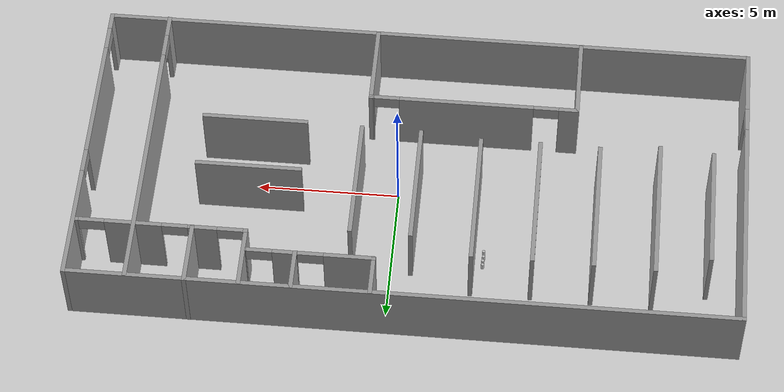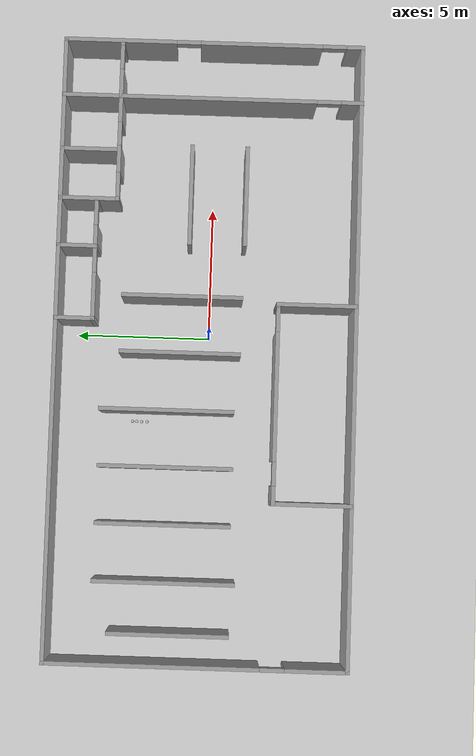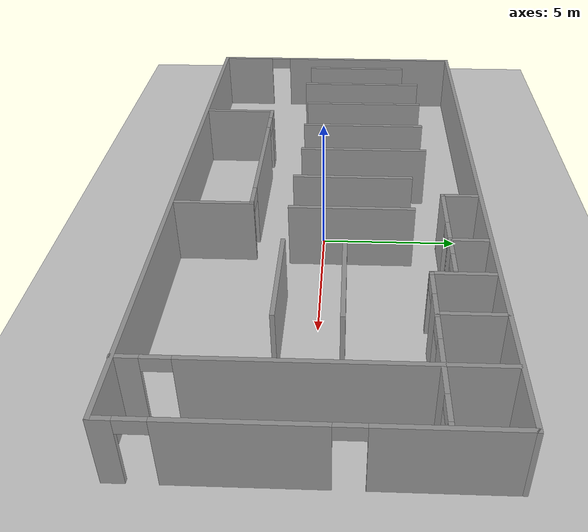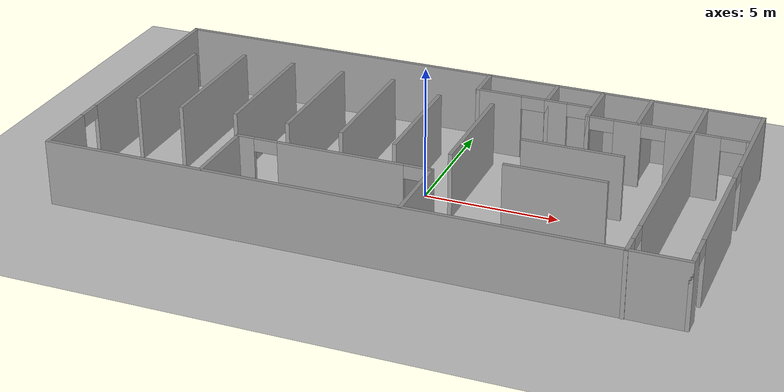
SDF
<sdf version="1.6">
 <world name="default">
  <model name="ground_plane">
   <static>1</static>
   <link name="link">
    <collision name="collision">
     <geometry><plane><normal>0 0 1</normal><size>100 100</size></plane></geometry>
     <surface>
      <contact><collide_bitmask>65535</collide_bitmask></contact>
      <friction><ode><mu>100</mu><mu2>50</mu2></ode></friction>
     </surface>
    </collision>
    <visual name="visual">
     <cast_shadows>0</cast_shadows>
     <geometry><plane><normal>0 0 1</normal><size>100 100</size></plane></geometry>
     <material>
      <script><uri>file://media/materials/scripts/gazebo.material</uri><name>Gazebo/Grey</name></script>
     </material>
    </visual>
   </link>
  </model>
  <model name="retail">
   <pose>-0.623438 0.12885 0 0 -0 0</pose>
   <link name="Wall_16">
    <collision name="Wall_16_Collision">
     <geometry><box><size>23.25 0.15 2.5</size></box></geometry>
     <pose>0 0 1.25 0 -0 0</pose>
    </collision>
    <visual name="Wall_16_Visual">
     <pose>0 0 1.25 0 -0 0</pose>
     <geometry><box><size>23.25 0.15 2.5</size></box></geometry>
     <material>
      <script><uri>file://media/materials/scripts/gazebo.material</uri><name>Gazebo/Grey</name></script>
      <ambient>1 1 1 1</ambient>
     </material>
     <meta><layer>0</layer></meta>
    </visual>
    <pose>0 -5.54055 0 0 -0 0</pose>
   </link>
   <link name="Wall_17">
    <pose>11.55 0.009451 0 0 -0 1.5708</pose>
    <visual name="Wall_17_Visual_0">
     <pose>-5.28706 0 1.25 0 -0 0</pose>
     <geometry><box><size>0.675885 0.15 2.5</size></box></geometry>
     <material>
      <script><uri>file://media/materials/scripts/gazebo.material</uri><name>Gazebo/Grey</name></script>
      <ambient>1 1 1 1</ambient>
     </material>
     <meta><layer>0</layer></meta>
    </visual>
    <collision name="Wall_17_Collision_0">
     <geometry><box><size>0.675885 0.15 2.5</size></box></geometry>
     <pose>-5.28706 0 1.25 0 -0 0</pose>
    </collision>
    <visual name="Wall_17_Visual_1">
     <pose>-1.77241 0 1.25 0 -0 0</pose>
     <geometry><box><size>4.55341 0.15 2.5</size></box></geometry>
     <material>
      <script><uri>file://media/materials/scripts/gazebo.material</uri><name>Gazebo/Grey</name></script>
      <ambient>1 1 1 1</ambient>
     </material>
     <meta><layer>0</layer></meta>
    </visual>
    <collision name="Wall_17_Collision_1">
     <geometry><box><size>4.55341 0.15 2.5</size></box></geometry>
     <pose>-1.77241 0 1.25 0 -0 0</pose>
    </collision>
    <visual name="Wall_17_Visual_2">
     <pose>3.51465 0 1.25 0 -0 0</pose>
     <geometry><box><size>4.2207 0.15 2.5</size></box></geometry>
     <material>
      <script><uri>file://media/materials/scripts/gazebo.material</uri><name>Gazebo/Grey</name></script>
      <ambient>1 1 1 1</ambient>
     </material>
     <meta><layer>0</layer></meta>
    </visual>
    <collision name="Wall_17_Collision_2">
     <geometry><box><size>4.2207 0.15 2.5</size></box></geometry>
     <pose>3.51465 0 1.25 0 -0 0</pose>
    </collision>
    <visual name="Wall_17_Visual_3">
     <pose>-4.49911 0 2.25 0 -0 0</pose>
     <geometry><box><size>0.9 0.15 0.5</size></box></geometry>
     <material>
      <script><uri>file://media/materials/scripts/gazebo.material</uri><name>Gazebo/Grey</name></script>
      <ambient>1 1 1 1</ambient>
     </material>
     <meta><layer>0</layer></meta>
    </visual>
    <collision name="Wall_17_Collision_3">
     <geometry><box><size>0.9 0.15 0.5</size></box></geometry>
     <pose>-4.49911 0 2.25 0 -0 0</pose>
    </collision>
    <visual name="Wall_17_Visual_4">
     <pose>0.954296 0 2.25 0 -0 0</pose>
     <geometry><box><size>0.9 0.15 0.5</size></box></geometry>
     <material>
      <script><uri>file://media/materials/scripts/gazebo.material</uri><name>Gazebo/Grey</name></script>
      <ambient>1 1 1 1</ambient>
     </material>
     <meta><layer>0</layer></meta>
    </visual>
    <collision name="Wall_17_Collision_4">
     <geometry><box><size>0.9 0.15 0.5</size></box></geometry>
     <pose>0.954296 0 2.25 0 -0 0</pose>
    </collision>
   </link>
   <link name="Wall_18">
    <collision name="Wall_18_Collision">
     <geometry><box><size>23.25 0.15 2.5</size></box></geometry>
     <pose>0 0 1.25 0 -0 0</pose>
    </collision>
    <visual name="Wall_18_Visual">
     <pose>0 0 1.25 0 -0 0</pose>
     <geometry><box><size>23.25 0.15 2.5</size></box></geometry>
     <material>
      <script><uri>file://media/materials/scripts/gazebo.material</uri><name>Gazebo/Grey</name></script>
      <ambient>1 1 1 1</ambient>
     </material>
     <meta><layer>0</layer></meta>
    </visual>
    <pose>0 5.55945 0 0 -0 3.14159</pose>
   </link>
   <link name="Wall_19">
    <pose>-11.55 0.009451 0 0 -0 -1.5708</pose>
    <visual name="Wall_19_Visual_0">
     <pose>-1.63416 0 1.25 0 -0 0</pose>
     <geometry><box><size>7.98168 0.15 2.5</size></box></geometry>
     <material>
      <script><uri>file://media/materials/scripts/gazebo.material</uri><name>Gazebo/Grey</name></script>
      <ambient>1 1 1 1</ambient>
     </material>
     <meta><layer>0</layer></meta>
    </visual>
    <collision name="Wall_19_Collision_0">
     <geometry><box><size>7.98168 0.15 2.5</size></box></geometry>
     <pose>-1.63416 0 1.25 0 -0 0</pose>
    </collision>
    <visual name="Wall_19_Visual_1">
     <pose>4.44084 0 1.25 0 -0 0</pose>
     <geometry><box><size>2.36832 0.15 2.5</size></box></geometry>
     <material>
      <script><uri>file://media/materials/scripts/gazebo.material</uri><name>Gazebo/Grey</name></script>
      <ambient>1 1 1 1</ambient>
     </material>
     <meta><layer>0</layer></meta>
    </visual>
    <collision name="Wall_19_Collision_1">
     <geometry><box><size>2.36832 0.15 2.5</size></box></geometry>
     <pose>4.44084 0 1.25 0 -0 0</pose>
    </collision>
    <visual name="Wall_19_Visual_2">
     <pose>2.80668 0 2.25 0 -0 0</pose>
     <geometry><box><size>0.9 0.15 0.5</size></box></geometry>
     <material>
      <script><uri>file://media/materials/scripts/gazebo.material</uri><name>Gazebo/Grey</name></script>
      <ambient>1 1 1 1</ambient>
     </material>
     <meta><layer>0</layer></meta>
    </visual>
    <collision name="Wall_19_Collision_2">
     <geometry><box><size>0.9 0.15 0.5</size></box></geometry>
     <pose>2.80668 0 2.25 0 -0 0</pose>
    </collision>
   </link>
   <link name="Wall_35">
    <collision name="Wall_35_Collision">
     <geometry><box><size>2.25 0.15 2.5</size></box></geometry>
     <pose>0 0 1.25 0 -0 0</pose>
    </collision>
    <visual name="Wall_35_Visual">
     <pose>0 0 1.25 0 -0 0</pose>
     <geometry><box><size>2.25 0.15 2.5</size></box></geometry>
     <material>
      <script><uri>file://media/materials/scripts/gazebo.material</uri><name>Gazebo/Grey</name></script>
      <ambient>1 1 1 1</ambient>
     </material>
     <meta><layer>0</layer></meta>
    </visual>
    <pose>5.55195 4.48539 0 0 -0 -1.5708</pose>
   </link>
   <link name="Wall_36">
    <pose>8.47695 3.43539 0 0 -0 0</pose>
    <visual name="Wall_36_Visual_0">
     <pose>-2.9149 0 1.25 0 -0 0</pose>
     <geometry><box><size>0.170197 0.15 2.5</size></box></geometry>
     <material>
      <script><uri>file://media/materials/scripts/gazebo.material</uri><name>Gazebo/Grey</name></script>
      <ambient>1 1 1 1</ambient>
     </material>
     <meta><layer>0</layer></meta>
    </visual>
    <collision name="Wall_36_Collision_0">
     <geometry><box><size>0.170197 0.15 2.5</size></box></geometry>
     <pose>-2.9149 0 1.25 0 -0 0</pose>
    </collision>
    <visual name="Wall_36_Visual_1">
     <pose>-1.42075 0 1.25 0 -0 0</pose>
     <geometry><box><size>1.0181 0.15 2.5</size></box></geometry>
     <material>
      <script><uri>file://media/materials/scripts/gazebo.material</uri><name>Gazebo/Grey</name></script>
      <ambient>1 1 1 1</ambient>
     </material>
     <meta><layer>0</layer></meta>
    </visual>
    <collision name="Wall_36_Collision_1">
     <geometry><box><size>1.0181 0.15 2.5</size></box></geometry>
     <pose>-1.42075 0 1.25 0 -0 0</pose>
    </collision>
    <visual name="Wall_36_Visual_2">
     <pose>0.986268 0 1.25 0 -0 0</pose>
     <geometry><box><size>1.99595 0.15 2.5</size></box></geometry>
     <material>
      <script><uri>file://media/materials/scripts/gazebo.material</uri><name>Gazebo/Grey</name></script>
      <ambient>1 1 1 1</ambient>
     </material>
     <meta><layer>0</layer></meta>
    </visual>
    <collision name="Wall_36_Collision_2">
     <geometry><box><size>1.99595 0.15 2.5</size></box></geometry>
     <pose>0.986268 0 1.25 0 -0 0</pose>
    </collision>
    <visual name="Wall_36_Visual_3">
     <pose>2.94212 0 1.25 0 -0 0</pose>
     <geometry><box><size>0.115758 0.15 2.5</size></box></geometry>
     <material>
      <script><uri>file://media/materials/scripts/gazebo.material</uri><name>Gazebo/Grey</name></script>
      <ambient>1 1 1 1</ambient>
     </material>
     <meta><layer>0</layer></meta>
    </visual>
    <collision name="Wall_36_Collision_3">
     <geometry><box><size>0.115758 0.15 2.5</size></box></geometry>
     <pose>2.94212 0 1.25 0 -0 0</pose>
    </collision>
    <visual name="Wall_36_Visual_4">
     <pose>-2.3798 0 2.25 0 -0 0</pose>
     <geometry><box><size>0.9 0.15 0.5</size></box></geometry>
     <material>
      <script><uri>file://media/materials/scripts/gazebo.material</uri><name>Gazebo/Grey</name></script>
      <ambient>1 1 1 1</ambient>
     </material>
     <meta><layer>0</layer></meta>
    </visual>
    <collision name="Wall_36_Collision_4">
     <geometry><box><size>0.9 0.15 0.5</size></box></geometry>
     <pose>-2.3798 0 2.25 0 -0 0</pose>
    </collision>
    <visual name="Wall_36_Visual_5">
     <pose>-0.461707 0 2.25 0 -0 0</pose>
     <geometry><box><size>0.9 0.15 0.5</size></box></geometry>
     <material>
      <script><uri>file://media/materials/scripts/gazebo.material</uri><name>Gazebo/Grey</name></script>
      <ambient>1 1 1 1</ambient>
     </material>
     <meta><layer>0</layer></meta>
    </visual>
    <collision name="Wall_36_Collision_5">
     <geometry><box><size>0.9 0.15 0.5</size></box></geometry>
     <pose>-0.461707 0 2.25 0 -0 0</pose>
    </collision>
    <visual name="Wall_36_Visual_6">
     <pose>2.43424 0 2.25 0 -0 0</pose>
     <geometry><box><size>0.9 0.15 0.5</size></box></geometry>
     <material>
      <script><uri>file://media/materials/scripts/gazebo.material</uri><name>Gazebo/Grey</name></script>
      <ambient>1 1 1 1</ambient>
     </material>
     <meta><layer>0</layer></meta>
    </visual>
    <collision name="Wall_36_Collision_6">
     <geometry><box><size>0.9 0.15 0.5</size></box></geometry>
     <pose>2.43424 0 2.25 0 -0 0</pose>
    </collision>
   </link>
   <link name="Wall_38">
    <pose>9.44374 -0.014611 0 0 -0 -1.5708</pose>
    <visual name="Wall_38_Visual_0">
     <pose>-0.875193 0 1.25 0 -0 0</pose>
     <geometry><box><size>9.49961 0.15 2.5</size></box></geometry>
     <material>
      <script><uri>file://media/materials/scripts/gazebo.material</uri><name>Gazebo/Grey</name></script>
      <ambient>1 1 1 1</ambient>
     </material>
     <meta><layer>0</layer></meta>
    </visual>
    <collision name="Wall_38_Collision_0">
     <geometry><box><size>9.49961 0.15 2.5</size></box></geometry>
     <pose>-0.875193 0 1.25 0 -0 0</pose>
    </collision>
    <visual name="Wall_38_Visual_1">
     <pose>5.19981 0 1.25 0 -0 0</pose>
     <geometry><box><size>0.850386 0.15 2.5</size></box></geometry>
     <material>
      <script><uri>file://media/materials/scripts/gazebo.material</uri><name>Gazebo/Grey</name></script>
      <ambient>1 1 1 1</ambient>
     </material>
     <meta><layer>0</layer></meta>
    </visual>
    <collision name="Wall_38_Collision_1">
     <geometry><box><size>0.850386 0.15 2.5</size></box></geometry>
     <pose>5.19981 0 1.25 0 -0 0</pose>
    </collision>
    <visual name="Wall_38_Visual_2">
     <pose>4.32461 0 2.25 0 -0 0</pose>
     <geometry><box><size>0.9 0.15 0.5</size></box></geometry>
     <material>
      <script><uri>file://media/materials/scripts/gazebo.material</uri><name>Gazebo/Grey</name></script>
      <ambient>1 1 1 1</ambient>
     </material>
     <meta><layer>0</layer></meta>
    </visual>
    <collision name="Wall_38_Collision_2">
     <geometry><box><size>0.9 0.15 0.5</size></box></geometry>
     <pose>4.32461 0 2.25 0 -0 0</pose>
    </collision>
   </link>
   <link name="Wall_44">
    <collision name="Wall_44_Collision">
     <geometry><box><size>2.25 0.15 2.5</size></box></geometry>
     <pose>0 0 1.25 0 -0 0</pose>
    </collision>
    <visual name="Wall_44_Visual">
     <pose>0 0 1.25 0 -0 0</pose>
     <geometry><box><size>2.25 0.15 2.5</size></box></geometry>
     <material>
      <script><uri>file://media/materials/scripts/gazebo.material</uri><name>Gazebo/Grey</name></script>
      <ambient>1 1 1 1</ambient>
     </material>
     <meta><layer>0</layer></meta>
    </visual>
    <pose>7.40721 4.51461 0 0 -0 1.5708</pose>
   </link>
   <link name="Wall_46">
    <collision name="Wall_46_Collision">
     <geometry><box><size>3 0.15 2.5</size></box></geometry>
     <pose>0 0 1.25 0 -0 0</pose>
    </collision>
    <visual name="Wall_46_Visual">
     <pose>0 0 1.25 0 -0 0</pose>
     <geometry><box><size>3 0.15 2.5</size></box></geometry>
     <material>
      <script><uri>file://media/materials/scripts/gazebo.material</uri><name>Gazebo/Grey</name></script>
      <ambient>1 1 1 1</ambient>
     </material>
     <meta><layer>0</layer></meta>
    </visual>
    <pose>-5.5361 -4.08719 0 0 -0 1.5708</pose>
   </link>
   <link name="Wall_47">
    <pose>-1.8611 -2.66219 0 0 -0 0</pose>
    <visual name="Wall_47_Visual_0">
     <pose>-3.38624 0 1.25 0 -0 0</pose>
     <geometry><box><size>0.727518 0.15 2.5</size></box></geometry>
     <material>
      <script><uri>file://media/materials/scripts/gazebo.material</uri><name>Gazebo/Grey</name></script>
      <ambient>1 1 1 1</ambient>
     </material>
     <meta><layer>0</layer></meta>
    </visual>
    <collision name="Wall_47_Collision_0">
     <geometry><box><size>0.727518 0.15 2.5</size></box></geometry>
     <pose>-3.38624 0 1.25 0 -0 0</pose>
    </collision>
    <visual name="Wall_47_Visual_1">
     <pose>0.267053 0 1.25 0 -0 0</pose>
     <geometry><box><size>4.77907 0.15 2.5</size></box></geometry>
     <material>
      <script><uri>file://media/materials/scripts/gazebo.material</uri><name>Gazebo/Grey</name></script>
      <ambient>1 1 1 1</ambient>
     </material>
     <meta><layer>0</layer></meta>
    </visual>
    <collision name="Wall_47_Collision_1">
     <geometry><box><size>4.77907 0.15 2.5</size></box></geometry>
     <pose>0.267053 0 1.25 0 -0 0</pose>
    </collision>
    <visual name="Wall_47_Visual_2">
     <pose>3.65329 0 1.25 0 -0 0</pose>
     <geometry><box><size>0.193413 0.15 2.5</size></box></geometry>
     <material>
      <script><uri>file://media/materials/scripts/gazebo.material</uri><name>Gazebo/Grey</name></script>
      <ambient>1 1 1 1</ambient>
     </material>
     <meta><layer>0</layer></meta>
    </visual>
    <collision name="Wall_47_Collision_2">
     <geometry><box><size>0.193413 0.15 2.5</size></box></geometry>
     <pose>3.65329 0 1.25 0 -0 0</pose>
    </collision>
    <visual name="Wall_47_Visual_3">
     <pose>-2.57248 0 2.25 0 -0 0</pose>
     <geometry><box><size>0.9 0.15 0.5</size></box></geometry>
     <material>
      <script><uri>file://media/materials/scripts/gazebo.material</uri><name>Gazebo/Grey</name></script>
      <ambient>1 1 1 1</ambient>
     </material>
     <meta><layer>0</layer></meta>
    </visual>
    <collision name="Wall_47_Collision_3">
     <geometry><box><size>0.9 0.15 0.5</size></box></geometry>
     <pose>-2.57248 0 2.25 0 -0 0</pose>
    </collision>
    <visual name="Wall_47_Visual_4">
     <pose>3.10659 0 2.25 0 -0 0</pose>
     <geometry><box><size>0.9 0.15 0.5</size></box></geometry>
     <material>
      <script><uri>file://media/materials/scripts/gazebo.material</uri><name>Gazebo/Grey</name></script>
      <ambient>1 1 1 1</ambient>
     </material>
     <meta><layer>0</layer></meta>
    </visual>
    <collision name="Wall_47_Collision_4">
     <geometry><box><size>0.9 0.15 0.5</size></box></geometry>
     <pose>3.10659 0 2.25 0 -0 0</pose>
    </collision>
   </link>
   <link name="Wall_48">
    <collision name="Wall_48_Collision">
     <geometry><box><size>3 0.15 2.5</size></box></geometry>
     <pose>0 0 1.25 0 -0 0</pose>
    </collision>
    <visual name="Wall_48_Visual">
     <pose>0 0 1.25 0 -0 0</pose>
     <geometry><box><size>3 0.15 2.5</size></box></geometry>
     <material>
      <script><uri>file://media/materials/scripts/gazebo.material</uri><name>Gazebo/Grey</name></script>
      <ambient>1 1 1 1</ambient>
     </material>
     <meta><layer>0</layer></meta>
    </visual>
    <pose>1.8139 -4.08719 0 0 -0 -1.5708</pose>
   </link>
   <link name="Wall_50">
    <collision name="Wall_50_Collision">
     <geometry><box><size>1.5 0.15 2.5</size></box></geometry>
     <pose>0 0 1.25 0 -0 0</pose>
    </collision>
    <visual name="Wall_50_Visual">
     <pose>0 0 1.25 0 -0 0</pose>
     <geometry><box><size>1.5 0.15 2.5</size></box></geometry>
     <material>
      <script><uri>file://media/materials/scripts/gazebo.material</uri><name>Gazebo/Grey</name></script>
      <ambient>1 1 1 1</ambient>
     </material>
     <meta><layer>0</layer></meta>
    </visual>
    <pose>1.0704 4.87092 0 0 -0 -1.5708</pose>
   </link>
   <link name="Wall_56">
    <collision name="Wall_56_Collision">
     <geometry><box><size>1.5 0.15 2.5</size></box></geometry>
     <pose>0 0 1.25 0 -0 0</pose>
    </collision>
    <visual name="Wall_56_Visual">
     <pose>0 0 1.25 0 -0 0</pose>
     <geometry><box><size>1.5 0.15 2.5</size></box></geometry>
     <material>
      <script><uri>file://media/materials/scripts/gazebo.material</uri><name>Gazebo/Grey</name></script>
      <ambient>1 1 1 1</ambient>
     </material>
     <meta><layer>0</layer></meta>
    </visual>
    <pose>3.77288 4.87092 0 0 -0 -1.5708</pose>
   </link>
   <link name="Wall_60">
    <pose>3.2454 4.19592 0 0 -0 0</pose>
    <visual name="Wall_60_Visual_0">
     <pose>-1.3533 0 1.25 0 -0 0</pose>
     <geometry><box><size>1.79341 0.15 2.5</size></box></geometry>
     <material>
      <script><uri>file://media/materials/scripts/gazebo.material</uri><name>Gazebo/Grey</name></script>
      <ambient>1 1 1 1</ambient>
     </material>
     <meta><layer>0</layer></meta>
    </visual>
    <collision name="Wall_60_Collision_0">
     <geometry><box><size>1.79341 0.15 2.5</size></box></geometry>
     <pose>-1.3533 0 1.25 0 -0 0</pose>
    </collision>
    <visual name="Wall_60_Visual_1">
     <pose>0.877237 0 1.25 0 -0 0</pose>
     <geometry><box><size>0.867658 0.15 2.5</size></box></geometry>
     <material>
      <script><uri>file://media/materials/scripts/gazebo.material</uri><name>Gazebo/Grey</name></script>
      <ambient>1 1 1 1</ambient>
     </material>
     <meta><layer>0</layer></meta>
    </visual>
    <collision name="Wall_60_Collision_1">
     <geometry><box><size>0.867658 0.15 2.5</size></box></geometry>
     <pose>0.877237 0 1.25 0 -0 0</pose>
    </collision>
    <visual name="Wall_60_Visual_2">
     <pose>2.23053 0 1.25 0 -0 0</pose>
     <geometry><box><size>0.038935 0.15 2.5</size></box></geometry>
     <material>
      <script><uri>file://media/materials/scripts/gazebo.material</uri><name>Gazebo/Grey</name></script>
      <ambient>1 1 1 1</ambient>
     </material>
     <meta><layer>0</layer></meta>
    </visual>
    <collision name="Wall_60_Collision_2">
     <geometry><box><size>0.038935 0.15 2.5</size></box></geometry>
     <pose>2.23053 0 1.25 0 -0 0</pose>
    </collision>
    <visual name="Wall_60_Visual_3">
     <pose>-0.006592 0 2.25 0 -0 0</pose>
     <geometry><box><size>0.9 0.15 0.5</size></box></geometry>
     <material>
      <script><uri>file://media/materials/scripts/gazebo.material</uri><name>Gazebo/Grey</name></script>
      <ambient>1 1 1 1</ambient>
     </material>
     <meta><layer>0</layer></meta>
    </visual>
    <collision name="Wall_60_Collision_3">
     <geometry><box><size>0.9 0.15 0.5</size></box></geometry>
     <pose>-0.006592 0 2.25 0 -0 0</pose>
    </collision>
    <visual name="Wall_60_Visual_4">
     <pose>1.76107 0 2.25 0 -0 0</pose>
     <geometry><box><size>0.9 0.15 0.5</size></box></geometry>
     <material>
      <script><uri>file://media/materials/scripts/gazebo.material</uri><name>Gazebo/Grey</name></script>
      <ambient>1 1 1 1</ambient>
     </material>
     <meta><layer>0</layer></meta>
    </visual>
    <collision name="Wall_60_Collision_4">
     <geometry><box><size>0.9 0.15 0.5</size></box></geometry>
     <pose>1.76107 0 2.25 0 -0 0</pose>
    </collision>
   </link>
   <link name="Wall_62">
    <collision name="Wall_62_Collision">
     <geometry><box><size>4.5 0.15 2.5</size></box></geometry>
     <pose>0 0 1.25 0 -0 0</pose>
    </collision>
    <visual name="Wall_62_Visual">
     <pose>0 0 1.25 0 -0 0</pose>
     <geometry><box><size>4.5 0.15 2.5</size></box></geometry>
     <material>
      <script><uri>file://media/materials/scripts/gazebo.material</uri><name>Gazebo/Grey</name></script>
      <ambient>1 1 1 1</ambient>
     </material>
     <meta><layer>0</layer></meta>
    </visual>
    <pose>-10.4135 1.04533 0 0 -0 -1.5708</pose>
   </link>
   <link name="Wall_64">
    <collision name="Wall_64_Collision">
     <geometry><box><size>5.25 0.15 2.5</size></box></geometry>
     <pose>0 0 1.25 0 -0 0</pose>
    </collision>
    <visual name="Wall_64_Visual">
     <pose>0 0 1.25 0 -0 0</pose>
     <geometry><box><size>5.25 0.15 2.5</size></box></geometry>
     <material>
      <script><uri>file://media/materials/scripts/gazebo.material</uri><name>Gazebo/Grey</name></script>
      <ambient>1 1 1 1</ambient>
     </material>
     <meta><layer>0</layer></meta>
    </visual>
    <pose>-8.53304 1.27209 0 0 -0 -1.5708</pose>
   </link>
   <link name="Wall_66">
    <collision name="Wall_66_Collision">
     <geometry><box><size>5 0.15 2.5</size></box></geometry>
     <pose>0 0 1.25 0 -0 0</pose>
    </collision>
    <visual name="Wall_66_Visual">
     <pose>0 0 1.25 0 -0 0</pose>
     <geometry><box><size>5 0.15 2.5</size></box></geometry>
     <material>
      <script><uri>file://media/materials/scripts/gazebo.material</uri><name>Gazebo/Grey</name></script>
      <ambient>1 1 1 1</ambient>
     </material>
     <meta><layer>0</layer></meta>
    </visual>
    <pose>-6.4269 1.35948 0 0 -0 -1.5708</pose>
   </link>
   <link name="Wall_68">
    <collision name="Wall_68_Collision">
     <geometry><box><size>5 0.15 2.5</size></box></geometry>
     <pose>0 0 1.25 0 -0 0</pose>
    </collision>
    <visual name="Wall_68_Visual">
     <pose>0 0 1.25 0 -0 0</pose>
     <geometry><box><size>5 0.15 2.5</size></box></geometry>
     <material>
      <script><uri>file://media/materials/scripts/gazebo.material</uri><name>Gazebo/Grey</name></script>
      <ambient>1 1 1 1</ambient>
     </material>
     <meta><layer>0</layer></meta>
    </visual>
    <pose>-4.32363 1.32963 0 0 -0 -1.5708</pose>
   </link>
   <link name="Wall_70">
    <collision name="Wall_70_Collision">
     <geometry><box><size>5 0.15 2.5</size></box></geometry>
     <pose>0 0 1.25 0 -0 0</pose>
    </collision>
    <visual name="Wall_70_Visual">
     <pose>0 0 1.25 0 -0 0</pose>
     <geometry><box><size>5 0.15 2.5</size></box></geometry>
     <material>
      <script><uri>file://media/materials/scripts/gazebo.material</uri><name>Gazebo/Grey</name></script>
      <ambient>1 1 1 1</ambient>
     </material>
     <meta><layer>0</layer></meta>
    </visual>
    <pose>-2.22937 1.34832 0 0 -0 -1.5708</pose>
   </link>
   <link name="Wall_72">
    <collision name="Wall_72_Collision">
     <geometry><box><size>4.5 0.15 2.5</size></box></geometry>
     <pose>0 0 1.25 0 -0 0</pose>
    </collision>
    <visual name="Wall_72_Visual">
     <pose>0 0 1.25 0 -0 0</pose>
     <geometry><box><size>4.5 0.15 2.5</size></box></geometry>
     <material>
      <script><uri>file://media/materials/scripts/gazebo.material</uri><name>Gazebo/Grey</name></script>
      <ambient>1 1 1 1</ambient>
     </material>
     <meta><layer>0</layer></meta>
    </visual>
    <pose>-0.097723 0.925172 0 0 -0 -1.5708</pose>
   </link>
   <link name="Wall_74">
    <collision name="Wall_74_Collision">
     <geometry><box><size>4.5 0.15 2.5</size></box></geometry>
     <pose>0 0 1.25 0 -0 0</pose>
    </collision>
    <visual name="Wall_74_Visual">
     <pose>0 0 1.25 0 -0 0</pose>
     <geometry><box><size>4.5 0.15 2.5</size></box></geometry>
     <material>
      <script><uri>file://media/materials/scripts/gazebo.material</uri><name>Gazebo/Grey</name></script>
      <ambient>1 1 1 1</ambient>
     </material>
     <meta><layer>0</layer></meta>
    </visual>
    <pose>1.99653 0.906473 0 0 -0 -1.5708</pose>
   </link>
   <link name="Wall_76">
    <collision name="Wall_76_Collision">
     <geometry><box><size>3.75 0.15 2.5</size></box></geometry>
     <pose>0 0 1.25 0 -0 0</pose>
    </collision>
    <visual name="Wall_76_Visual">
     <pose>0 0 1.25 0 -0 0</pose>
     <geometry><box><size>3.75 0.15 2.5</size></box></geometry>
     <material>
      <script><uri>file://media/materials/scripts/gazebo.material</uri><name>Gazebo/Grey</name></script>
      <ambient>1 1 1 1</ambient>
     </material>
     <meta><layer>0</layer></meta>
    </visual>
    <pose>5.79729 0.706741 0 0 -0 0</pose>
   </link>
   <link name="Wall_78">
    <collision name="Wall_78_Collision">
     <geometry><box><size>3.75 0.15 2.5</size></box></geometry>
     <pose>0 0 1.25 0 -0 0</pose>
    </collision>
    <visual name="Wall_78_Visual">
     <pose>0 0 1.25 0 -0 0</pose>
     <geometry><box><size>3.75 0.15 2.5</size></box></geometry>
     <material>
      <script><uri>file://media/materials/scripts/gazebo.material</uri><name>Gazebo/Grey</name></script>
      <ambient>1 1 1 1</ambient>
     </material>
     <meta><layer>0</layer></meta>
    </visual>
    <pose>5.80269 -1.35025 0 0 -0 0</pose>
   </link>
   <static>1</static>
  </model>
  <model name="beer">
   <link name="link">
    <pose>0 0 0.115 0 -0 0</pose>
    <inertial>
     <mass>0.39</mass>
     <inertia><ixx>0.00058</ixx><ixy>0</ixy><ixz>0</ixz><iyy>0.00058</iyy><iyz>0</iyz><izz>0.00019</izz></inertia>
    </inertial>
    <collision name="collision">
     <geometry><cylinder><radius>0.055</radius><length>0.23</length></cylinder></geometry>
    </collision>
    <visual name="visual">
     <geometry><cylinder><radius>0.055</radius><length>0.23</length></cylinder></geometry>
     <material>
      <script>
       <uri>model://beer/materials/scripts</uri>
       <uri>model://beer/materials/textures</uri>
       <name>Beer/Diffuse</name>
      </script>
     </material>
    </visual>
   </link>
   <pose>-3.21512 2.81112 0.059991 3e-06 1.2e-05 -0.000199</pose>
  </model>
  <model name="beer_0">
   <link name="link">
    <pose>0 0 0.115 0 -0 0</pose>
    <inertial>
     <mass>0.39</mass>
     <inertia><ixx>0.00058</ixx><ixy>0</ixy><ixz>0</ixz><iyy>0.00058</iyy><iyz>0</iyz><izz>0.00019</izz></inertia>
    </inertial>
    <collision name="collision">
     <geometry><cylinder><radius>0.055</radius><length>0.23</length></cylinder></geometry>
    </collision>
    <visual name="visual">
     <geometry><cylinder><radius>0.055</radius><length>0.23</length></cylinder></geometry>
     <material>
      <script>
       <uri>model://beer/materials/scripts</uri>
       <uri>model://beer/materials/textures</uri>
       <name>Beer/Diffuse</name>
      </script>
     </material>
    </visual>
   </link>
   <pose>-3.2178 2.64972 0.060005 2.5e-05 9.6e-05 -0.000184</pose>
  </model>
  <model name="beer_1">
   <link name="link">
    <pose>0 0 0.115 0 -0 0</pose>
    <inertial>
     <mass>0.39</mass>
     <inertia><ixx>0.00058</ixx><ixy>0</ixy><ixz>0</ixz><iyy>0.00058</iyy><iyz>0</iyz><izz>0.00019</izz></inertia>
    </inertial>
    <collision name="collision">
     <geometry><cylinder><radius>0.055</radius><length>0.23</length></cylinder></geometry>
    </collision>
    <visual name="visual">
     <geometry><cylinder><radius>0.055</radius><length>0.23</length></cylinder></geometry>
     <material>
      <script>
       <uri>model://beer/materials/scripts</uri>
       <uri>model://beer/materials/textures</uri>
       <name>Beer/Diffuse</name>
      </script>
     </material>
    </visual>
   </link>
   <pose>-3.22679 2.46744 0.060006 2.5e-05 0.000101 -0.000204</pose>
  </model>
  <model name="beer_2">
   <link name="link">
    <pose>0 0 0.115 0 -0 0</pose>
    <inertial>
     <mass>0.39</mass>
     <inertia><ixx>0.00058</ixx><ixy>0</ixy><ixz>0</ixz><iyy>0.00058</iyy><iyz>0</iyz><izz>0.00019</izz></inertia>
    </inertial>
    <collision name="collision">
     <geometry><cylinder><radius>0.055</radius><length>0.23</length></cylinder></geometry>
    </collision>
    <visual name="visual">
     <geometry><cylinder><radius>0.055</radius><length>0.23</length></cylinder></geometry>
     <material>
      <script>
       <uri>model://beer/materials/scripts</uri>
       <uri>model://beer/materials/textures</uri>
       <name>Beer/Diffuse</name>
      </script>
     </material>
    </visual>
   </link>
   <pose>-3.2189 2.25449 0.06 -1e-06 -8e-06 -0.00015</pose>
  </model>
 </world>
</sdf>
